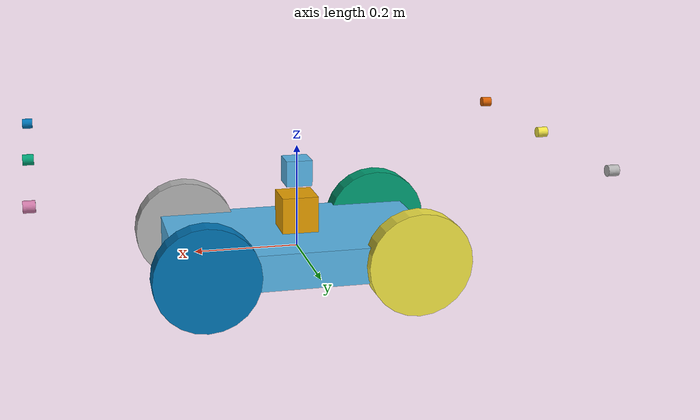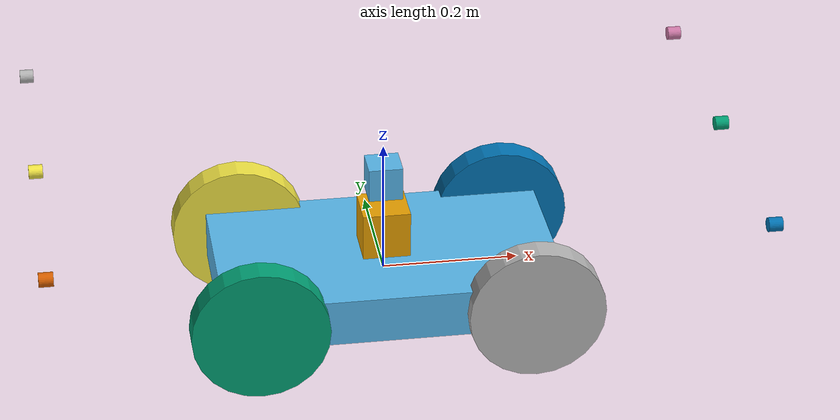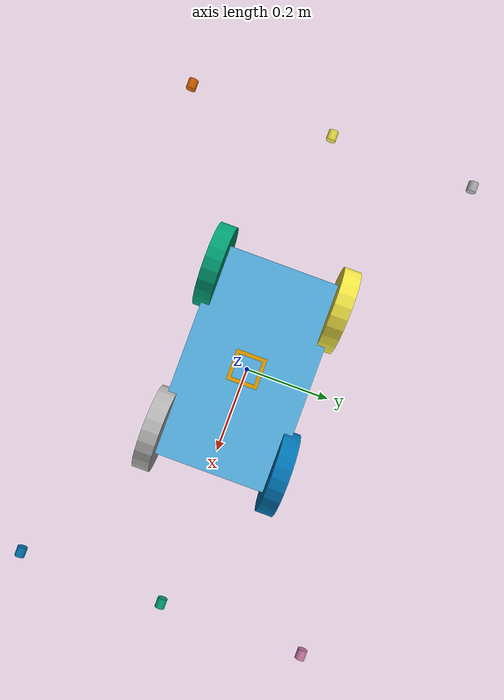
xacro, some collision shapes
<robot name="simple4wheeler" xmlns:xacro="http://www.ros.org/wiki/xacro">
    <xacro:property name="pi_" value="3.142" />
    <link name="map">
    </link>

    <link name="link_chassis">
        <!--pose x,y,z roll pitch yaw(orientation)-->
        <pose> 0 0 0.1 0 0 0 </pose>
        <inertial>
            <mass value="3"/>
            <origin rpy="0 0 0" xyz="0 0 0.1"/>
            <inertia ixx="0.03954"
                    ixy="0"
                    ixz="0"
                    iyy="0.10620"
                    iyz="0"
                    izz="0.10620"/>
        </inertial>
        <collision name="collision_chassis">
            <geometry>
                <box size="0.5 0.3 0.07"/>
            </geometry>
        </collision>
        <visual name="visual_chassis">
            <geometry>
                <box size="0.5 0.3 0.07"/>
            </geometry>
        </visual>
    </link>

    <joint name="joint_map" type="fixed">
        <parent link="map"/>
        <child link="link_chassis"/>
    </joint>

    <link name="link_right_back_wheel">
        <inertial>
            <mass value="0.2"/>
            <origin rpy="0 0 0" xyz="0 0 0.1"/>
            <inertia ixx="0.00052"
                     ixy="0"
                     ixz="0"
                     iyy="0.00052"
                     iyz="0"
                     izz="0.001"/>

        </inertial>
        <collision name="collision_right_back_wheel">
            <geometry>
                <cylinder length="0.04" radius="0.1" />
            </geometry>
        </collision>

        <visual name="collision_right_back_wheel">
            <geometry>
                <cylinder length="0.04" radius="0.1" />
            </geometry>
        </visual>
    </link>

    <joint name="joint_right_back_wheel" type="continuous">
        <origin rpy="1.5708 0 0" xyz="-0.20 -0.15 0"/>
        <parent link="link_chassis"/>
        <child link="link_right_back_wheel"/>
        <axis rpy="0 1.5708 0" xyz="0 0 1"/>
        <limit effort="10" velocity="10"/>
        <joint_properties damping="1.0" friction="1.0"/>
    </joint>

    <link name="link_left_back_wheel">
        <inertial>
            <mass value="0.2"/>
            <origin rpy="0 0 0" xyz="0 0 0.1"/>
            <inertia ixx="0.00052"
                     ixy="0"
                     ixz="0"
                     iyy="0.00052"
                     iyz="0"
                     izz="0.001"/>

        </inertial>
        <collision name="collision_left_back_wheel">
            <geometry>
                <cylinder length="0.04" radius="0.1" />
            </geometry>
        </collision>

        <visual name="collision_left_back_wheel">
            <geometry>
                <cylinder length="0.04" radius="0.1" />
            </geometry>
        </visual>
    </link>

    <joint name="joint_left_back_wheel" type="continuous">
        <origin rpy="1.5708 0 0" xyz="-0.20 0.15 0"/>
        <parent link="link_chassis"/>
        <child link="link_left_back_wheel"/>
        <axis rpy="0 0 0" xyz="0 0 1"/>
        <limit effort="10" velocity="10"/>
        <joint_properties damping="1.0" friction="1.0"/>

    </joint>

    <!-- Left Front Wheel -->
    <link name="link_left_front_wheel">
        <inertial>
            <mass value="0.2"/>
            <origin rpy="0 0 0" xyz="0 0 0.1"/>
            <inertia ixx="0.00052"
                    ixy="0"
                    ixz="0"
                    iyy="0.00052"
                    iyz="0"
                    izz="0.001"/>
        </inertial>
        <collision name="collision_left_front_wheel">
            <geometry>
                <cylinder length="0.04" radius="0.1" />
            </geometry>
        </collision>

        <visual name="visual_left_front_wheel">
            <geometry>
                <cylinder length="0.04" radius="0.1" />
            </geometry>
        </visual>
    </link>

    <!-- Steering link for right front wheel -->
    <link name="link_left_front_steer">
        <inertial>
            <mass value="0.1"/>
            <origin xyz="0 0 0" rpy="0 0 0"/>
            <inertia ixx="0.001"
                    ixy="0"
                    ixz="0"
                    iyy="0.001"
                    iyz="0"
                    izz="0.001"/>
        </inertial>
    </link>

    <joint name="joint_left_front_steer" type="revolute">
        <origin xyz="0.20 0.15 0" rpy="0 0 0"/>
        <parent link="link_chassis"/>
        <child link="link_left_front_steer"/>
        <axis xyz="1 0 0"/>
        <limit lower="-0.5" upper="0.5" effort="10" velocity="1.0"/>
    </joint>

    <joint name="joint_left_front_wheel" type="continuous">
        <origin rpy="1.5708 0 0" xyz="0 0 0"/>
        <parent link="link_left_front_steer"/>
        <child link="link_left_front_wheel"/>
        <axis xyz="0 0 1"/>
        <limit effort="10" velocity="10"/>
        <joint_properties damping="1.0" friction="1.0"/>
    </joint>

    <!-- Right Front Wheel -->
    <!-- Steering Link -->
    <link name="link_right_front_steer" >
        <inertial>
            <mass value="0.1"/>
            <origin xyz="0 0 0" rpy="0 0 0"/>
            <inertia ixx="0.001"
                    ixy="0"
                    ixz="0"
                    iyy="0.001"
                    iyz="0"
                    izz="0.001"/>
        </inertial>
    </link>

    <!-- Steering Joint -->
    <joint name="joint_right_front_steer" type="revolute">
        <origin rpy="0 0 0" xyz="0.20 -0.15 0" />
        <parent link="link_chassis"/>
        <child link="link_right_front_steer"/>
        <axis xyz="0 0 1" />
        <limit lower="-1.0" upper="1.0" effort="5.0" velocity="1.0" />
    </joint>

    <!-- Wheel link -->
    <link name="link_right_front_wheel">
        <inertial>
            <mass value="0.2"/>
            <origin rpy="0 0 0" xyz="0 0 0.1"/>
            <inertia ixx="0.00052"
                    ixy="0"
                    ixz="0"
                    iyy="0.00052"
                    iyz="0"
                    izz="0.001"/>
        </inertial>
        <collision name="collision_right_front_wheel">
            <geometry>
                <cylinder length="0.04" radius="0.1" />
            </geometry>
        </collision>
        <visual name="visual_right_front_wheel">
            <geometry>
                <cylinder length="0.04" radius="0.1" />
            </geometry>
        </visual>
    </link>

    <!-- Wheel rotation joint -->
    <joint name="joint_right_front_wheel" type="continuous">
        <origin rpy="1.5708 0 0" xyz=" 0 0 0"/>
        <parent link="link_right_front_steer"/>
        <child link="link_right_front_wheel"/>
        <axis xyz="0 0 1"/>
        <limit effort="10" velocity="10"/>
        <joint_properties damping="1.0" friction="1.0"/>
    </joint>

   <!-- lidar -->
    <link name="link_lidar">
        <inertial>
            <mass value="0.1"/>
            <origin rpy="0 0 0" xyz="0 0 0"/>
            <inertia ixx="0.00001"
                     ixy="0"
                     ixz="0"
                     iyy="0.00001"
                     iyz="0"
                     izz="0.00001"/>

        </inertial>
        <collision name="collision_lidar">
            <geometry>
                <box size="0.07 0.07 0.07"/>
            </geometry>
        </collision>

        <visual name="visual_lidar">
            <geometry>
                <mesh filename="file://package://simple4wheeler/model/rplidar_a2_simple.stl" />
            </geometry>
        </visual>
    </link>

    <joint name="joint_lidar" type="fixed">
        <origin rpy="0 0 0" xyz="0 0 0.07" />
        <parent link="link_chassis" />
        <child link="link_lidar"/>
    </joint>

    <gazebo reference="link_lidar">
        <sensor type="ray" name="sensor_lidar">
            <update_rate>10</update_rate>
            <visualize>true</visualize>
            <ray>
                <scan>
                    <horizontal>
                        <samples>400</samples>
                        <min_angle>-${pi_}</min_angle>
                        <max_angle>${pi_}</max_angle>
                    </horizontal>

                    <vertical>
                        <samples>1</samples>
                        <min_angle>-0.05</min_angle>
                        <max_angle>0.05</max_angle>
                    </vertical>
                </scan>

                    <range>
                        <min>0.015</min>
                        <max>12</max>
                        <resolution>0.01</resolution>
                    </range>
            </ray>
                <plugin name="gazebo_ros_lidar" filename="libgazebo_ros_laser.so">
                    <gaussianNoise>0.01</gaussianNoise>
                    <updateRate>10</updateRate>
                    <topicName>lidar</topicName>
                    <minRange>0.15</minRange>
                    <maxRange>12</maxRange>
                    <frameName>link_radar</frameName>
                </plugin>
        </sensor>
    </gazebo>

<!-- Camera Link -->
    <link name="link_camera">
        <inertial>
            <mass value="0.1"/>
            <origin xyz="0 0 0.1" rpy="0 0 0"/>
            <inertia ixx="0.00001" ixy="0" ixz="0" iyy="0.00001" iyz="0" izz="0.00001"/>
        </inertial>
        <visual>
            <geometry>
                <box size="0.05 0.05 0.05"/>
            </geometry>
        </visual>
    </link>

    <joint name="joint_camera" type="fixed">
        <parent link="link_chassis"/>
        <child link="link_camera"/>
        <origin xyz="0 0 0.15" rpy="0 0 0"/>
    </joint>

    <gazebo reference="link_camera">
        <sensor type="camera" name="camera_sensor">
            <update_rate>30.0</update_rate>
            <camera>
                <horizontal_fov>1.3962634</horizontal_fov>
                <image>
                    <width>640</width>
                    <height>480</height>
                    <format>R8G8B8</format>
                </image>
                <clip>
                    <near>0.1</near>
                    <far>100</far>
                </clip>
            </camera>
            <plugin name="camera_controller" filename="libgazebo_ros_camera.so">
                <cameraName>simple_camera</cameraName>
                <imageTopicName>image_raw</imageTopicName>
                <cameraInfoTopicName>camera_info</cameraInfoTopicName>
                <frameName>link_camera</frameName>
            </plugin>
        </sensor>
    </gazebo>

    <!-- Ultrasonic Sensor Template -->
   <!-- Front Center Sensor -->
    <link name="ultrasonic_front_center">
        <visual>
            <geometry>
            <cylinder radius="0.01" length="0.02"/>
            </geometry>
            <origin xyz="0.25 0 0.1" rpy="0 1.5708 0"/>
        </visual>
    </link>
    <joint name="joint_ultrasonic_front_center" type="fixed">
        <parent link="link_chassis"/>
        <child link="ultrasonic_front_center"/>
        <origin xyz="0.25 0 0.1" rpy="0 0 0"/>
    </joint>

    <!-- Back Center Sensor -->
    <link name="ultrasonic_back_center">
        <visual>
            <geometry>
            <cylinder radius="0.01" length="0.02"/>
            </geometry>
            <origin xyz="-0.25 0 0.1" rpy="0 -1.5708 0"/>
        </visual>
    </link>
    <joint name="joint_ultrasonic_back_center" type="fixed">
        <parent link="link_chassis"/>
        <child link="ultrasonic_back_center"/>
        <origin xyz="-0.25 0 0.1" rpy="0 0 0"/>
    </joint>

    <!-- Front Right Corner Sensor -->
    <link name="ultrasonic_front_right_corner">
        <visual>
            <geometry>
            <cylinder radius="0.01" length="0.02"/>
            </geometry>
            <origin xyz="0.25 -0.15 0.1" rpy="0 1.5708 0"/>
        </visual>
    </link>
    <joint name="joint_ultrasonic_front_right_corner" type="fixed">
        <parent link="link_chassis"/>
        <child link="ultrasonic_front_right_corner"/>
        <origin xyz="0.25 -0.15 0.1" rpy="0 0 0"/>
    </joint>

    <!-- Back Right Corner Sensor -->
    <link name="ultrasonic_back_right_corner">
        <visual>
            <geometry>
            <cylinder radius="0.01" length="0.02"/>
            </geometry>
            <origin xyz="-0.25 -0.15 0.1" rpy="0 -1.5708 0"/>
        </visual>
    </link>
    <joint name="joint_ultrasonic_back_right_corner" type="fixed">
        <parent link="link_chassis"/>
        <child link="ultrasonic_back_right_corner"/>
        <origin xyz="-0.25 -0.15 0.1" rpy="0 0 0"/>
    </joint>

    <!-- Front Left Corner Sensor -->
    <link name="ultrasonic_front_left_corner">
        <visual>
            <geometry>
            <cylinder radius="0.01" length="0.02"/>
            </geometry>
            <origin xyz="0.25 0.15 0.1" rpy="0 1.5708 0"/>
        </visual>
    </link>
    <joint name="joint_ultrasonic_front_left_corner" type="fixed">
        <parent link="link_chassis"/>
        <child link="ultrasonic_front_left_corner"/>
        <origin xyz="0.25 0.15 0.1" rpy="0 0 0"/>
    </joint>

    <!-- Back Left Corner Sensor -->
    <link name="ultrasonic_back_left_corner">
        <visual>
            <geometry>
            <cylinder radius="0.01" length="0.02"/>
            </geometry>
            <origin xyz="-0.25 0.15 0.1" rpy="0 -1.5708 0"/>
        </visual>
    </link>
    <joint name="joint_ultrasonic_back_left_corner" type="fixed">
        <parent link="link_chassis"/>
        <child link="ultrasonic_back_left_corner"/>
        <origin xyz="-0.25 0.15 0.1" rpy="0 0 0"/>
    </joint>

    <gazebo>
        <plugin name = "skid_steer_driver_controller filename" filename= "libgazebo_ros_skid_steer_drive.so">
            <updateRate>100</updateRate>
            <robotNamespace>/</robotNamespace>
            <leftFrontJoint>joint_left_front_wheel</leftFrontJoint>
            <rightFrontJoint>joint_right_front_wheel</rightFrontJoint>
            <leftRearJoint>joint_left_back_wheel</leftRearJoint>
            <rightRearJoint>joint_right_back_wheel</rightRearJoint>
            <wheelSeparation>0.4</wheelSeparation>
            <wheelDiameter>0.215</wheelDiameter>
            <torque>20</torque>
            <robotBaseFrame>base_link</robotBaseFrame>
            <topicname>cmd_vel</topicname>
            <broadcastTF>false</broadcastTF>
        </plugin>
    </gazebo>
</robot>
